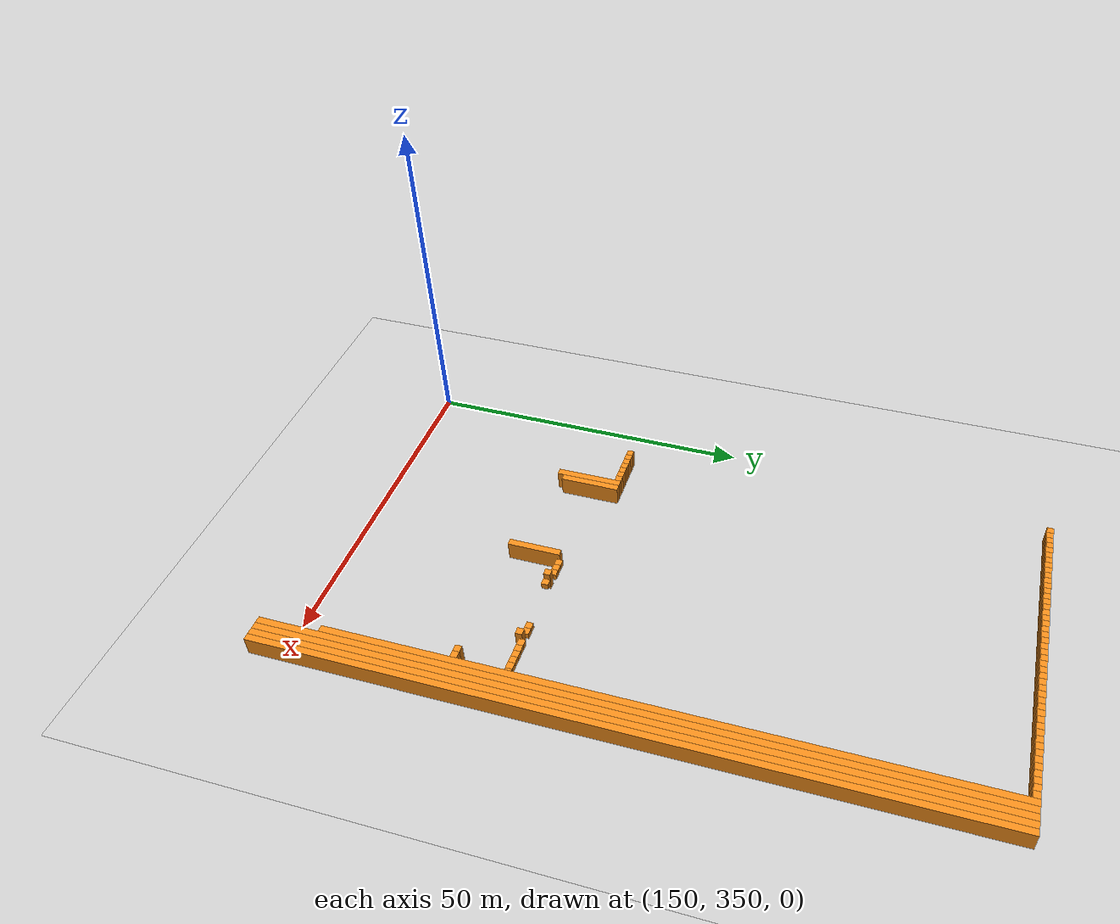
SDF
<sdf version="1.6">
 <world name="default">
  <include><uri>model://ground_plane</uri></include>
  <model name="unit_box_1642">
   <pose>155.50   449.50     1.50 0 0 0</pose>
   <static>1</static>
   <link name="link">
    <inertial>
     <mass>5000</mass>
     <inertia><ixx>200</ixx><ixy>0</ixy><ixz>0</ixz><iyy>200</iyy><iyz>0</iyz><izz>200</izz></inertia>
    </inertial>
    <collision name="collision"><geometry><box><size>1 1 3</size></box></geometry></collision>
    <visual name="visual">
     <geometry><box><size>1 1 3</size></box></geometry>
     <material>
      <script><name>Gazebo/Orange</name><uri>file://media/materials/scripts/gazebo.material</uri></script>
     </material>
    </visual>
   </link>
  </model>
  <model name="unit_box_1649">
   <pose>156.50   384.50     1.50 0 0 0</pose>
   <static>1</static>
   <link name="link">
    <inertial>
     <mass>5000</mass>
     <inertia><ixx>200</ixx><ixy>0</ixy><ixz>0</ixz><iyy>200</iyy><iyz>0</iyz><izz>200</izz></inertia>
    </inertial>
    <collision name="collision"><geometry><box><size>1 1 3</size></box></geometry></collision>
    <visual name="visual">
     <geometry><box><size>1 1 3</size></box></geometry>
     <material>
      <script><name>Gazebo/Orange</name><uri>file://media/materials/scripts/gazebo.material</uri></script>
     </material>
    </visual>
   </link>
  </model>
  <model name="unit_box_1650">
   <pose>156.50   449.50     1.50 0 0 0</pose>
   <static>1</static>
   <link name="link">
    <inertial>
     <mass>5000</mass>
     <inertia><ixx>200</ixx><ixy>0</ixy><ixz>0</ixz><iyy>200</iyy><iyz>0</iyz><izz>200</izz></inertia>
    </inertial>
    <collision name="collision"><geometry><box><size>1 1 3</size></box></geometry></collision>
    <visual name="visual">
     <geometry><box><size>1 1 3</size></box></geometry>
     <material>
      <script><name>Gazebo/Orange</name><uri>file://media/materials/scripts/gazebo.material</uri></script>
     </material>
    </visual>
   </link>
  </model>
  <model name="unit_box_1657">
   <pose>157.50   384.50     1.50 0 0 0</pose>
   <static>1</static>
   <link name="link">
    <inertial>
     <mass>5000</mass>
     <inertia><ixx>200</ixx><ixy>0</ixy><ixz>0</ixz><iyy>200</iyy><iyz>0</iyz><izz>200</izz></inertia>
    </inertial>
    <collision name="collision"><geometry><box><size>1 1 3</size></box></geometry></collision>
    <visual name="visual">
     <geometry><box><size>1 1 3</size></box></geometry>
     <material>
      <script><name>Gazebo/Orange</name><uri>file://media/materials/scripts/gazebo.material</uri></script>
     </material>
    </visual>
   </link>
  </model>
  <model name="unit_box_1658">
   <pose>157.50   449.50     1.50 0 0 0</pose>
   <static>1</static>
   <link name="link">
    <inertial>
     <mass>5000</mass>
     <inertia><ixx>200</ixx><ixy>0</ixy><ixz>0</ixz><iyy>200</iyy><iyz>0</iyz><izz>200</izz></inertia>
    </inertial>
    <collision name="collision"><geometry><box><size>1 1 3</size></box></geometry></collision>
    <visual name="visual">
     <geometry><box><size>1 1 3</size></box></geometry>
     <material>
      <script><name>Gazebo/Orange</name><uri>file://media/materials/scripts/gazebo.material</uri></script>
     </material>
    </visual>
   </link>
  </model>
  <model name="unit_box_1665">
   <pose>158.50   384.50     1.50 0 0 0</pose>
   <static>1</static>
   <link name="link">
    <inertial>
     <mass>5000</mass>
     <inertia><ixx>200</ixx><ixy>0</ixy><ixz>0</ixz><iyy>200</iyy><iyz>0</iyz><izz>200</izz></inertia>
    </inertial>
    <collision name="collision"><geometry><box><size>1 1 3</size></box></geometry></collision>
    <visual name="visual">
     <geometry><box><size>1 1 3</size></box></geometry>
     <material>
      <script><name>Gazebo/Orange</name><uri>file://media/materials/scripts/gazebo.material</uri></script>
     </material>
    </visual>
   </link>
  </model>
  <model name="unit_box_1666">
   <pose>158.50   449.50     1.50 0 0 0</pose>
   <static>1</static>
   <link name="link">
    <inertial>
     <mass>5000</mass>
     <inertia><ixx>200</ixx><ixy>0</ixy><ixz>0</ixz><iyy>200</iyy><iyz>0</iyz><izz>200</izz></inertia>
    </inertial>
    <collision name="collision"><geometry><box><size>1 1 3</size></box></geometry></collision>
    <visual name="visual">
     <geometry><box><size>1 1 3</size></box></geometry>
     <material>
      <script><name>Gazebo/Orange</name><uri>file://media/materials/scripts/gazebo.material</uri></script>
     </material>
    </visual>
   </link>
  </model>
  <model name="unit_box_1672">
   <pose>159.50   384.50     1.50 0 0 0</pose>
   <static>1</static>
   <link name="link">
    <inertial>
     <mass>5000</mass>
     <inertia><ixx>200</ixx><ixy>0</ixy><ixz>0</ixz><iyy>200</iyy><iyz>0</iyz><izz>200</izz></inertia>
    </inertial>
    <collision name="collision"><geometry><box><size>1 1 3</size></box></geometry></collision>
    <visual name="visual">
     <geometry><box><size>1 1 3</size></box></geometry>
     <material>
      <script><name>Gazebo/Orange</name><uri>file://media/materials/scripts/gazebo.material</uri></script>
     </material>
    </visual>
   </link>
  </model>
  <model name="unit_box_1673">
   <pose>159.50   449.50     1.50 0 0 0</pose>
   <static>1</static>
   <link name="link">
    <inertial>
     <mass>5000</mass>
     <inertia><ixx>200</ixx><ixy>0</ixy><ixz>0</ixz><iyy>200</iyy><iyz>0</iyz><izz>200</izz></inertia>
    </inertial>
    <collision name="collision"><geometry><box><size>1 1 3</size></box></geometry></collision>
    <visual name="visual">
     <geometry><box><size>1 1 3</size></box></geometry>
     <material>
      <script><name>Gazebo/Orange</name><uri>file://media/materials/scripts/gazebo.material</uri></script>
     </material>
    </visual>
   </link>
  </model>
  <model name="unit_box_1681">
   <pose>160.50   384.50     1.50 0 0 0</pose>
   <static>1</static>
   <link name="link">
    <inertial>
     <mass>5000</mass>
     <inertia><ixx>200</ixx><ixy>0</ixy><ixz>0</ixz><iyy>200</iyy><iyz>0</iyz><izz>200</izz></inertia>
    </inertial>
    <collision name="collision"><geometry><box><size>1 1 3</size></box></geometry></collision>
    <visual name="visual">
     <geometry><box><size>1 1 3</size></box></geometry>
     <material>
      <script><name>Gazebo/Orange</name><uri>file://media/materials/scripts/gazebo.material</uri></script>
     </material>
    </visual>
   </link>
  </model>
  <model name="unit_box_1682">
   <pose>160.50   449.50     1.50 0 0 0</pose>
   <static>1</static>
   <link name="link">
    <inertial>
     <mass>5000</mass>
     <inertia><ixx>200</ixx><ixy>0</ixy><ixz>0</ixz><iyy>200</iyy><iyz>0</iyz><izz>200</izz></inertia>
    </inertial>
    <collision name="collision"><geometry><box><size>1 1 3</size></box></geometry></collision>
    <visual name="visual">
     <geometry><box><size>1 1 3</size></box></geometry>
     <material>
      <script><name>Gazebo/Orange</name><uri>file://media/materials/scripts/gazebo.material</uri></script>
     </material>
    </visual>
   </link>
  </model>
  <model name="unit_box_1689">
   <pose>161.50   384.50     1.50 0 0 0</pose>
   <static>1</static>
   <link name="link">
    <inertial>
     <mass>5000</mass>
     <inertia><ixx>200</ixx><ixy>0</ixy><ixz>0</ixz><iyy>200</iyy><iyz>0</iyz><izz>200</izz></inertia>
    </inertial>
    <collision name="collision"><geometry><box><size>1 1 3</size></box></geometry></collision>
    <visual name="visual">
     <geometry><box><size>1 1 3</size></box></geometry>
     <material>
      <script><name>Gazebo/Orange</name><uri>file://media/materials/scripts/gazebo.material</uri></script>
     </material>
    </visual>
   </link>
  </model>
  <model name="unit_box_1690">
   <pose>161.50   449.50     1.50 0 0 0</pose>
   <static>1</static>
   <link name="link">
    <inertial>
     <mass>5000</mass>
     <inertia><ixx>200</ixx><ixy>0</ixy><ixz>0</ixz><iyy>200</iyy><iyz>0</iyz><izz>200</izz></inertia>
    </inertial>
    <collision name="collision"><geometry><box><size>1 1 3</size></box></geometry></collision>
    <visual name="visual">
     <geometry><box><size>1 1 3</size></box></geometry>
     <material>
      <script><name>Gazebo/Orange</name><uri>file://media/materials/scripts/gazebo.material</uri></script>
     </material>
    </visual>
   </link>
  </model>
  <model name="unit_box_1697">
   <pose>162.50   384.50     1.50 0 0 0</pose>
   <static>1</static>
   <link name="link">
    <inertial>
     <mass>5000</mass>
     <inertia><ixx>200</ixx><ixy>0</ixy><ixz>0</ixz><iyy>200</iyy><iyz>0</iyz><izz>200</izz></inertia>
    </inertial>
    <collision name="collision"><geometry><box><size>1 1 3</size></box></geometry></collision>
    <visual name="visual">
     <geometry><box><size>1 1 3</size></box></geometry>
     <material>
      <script><name>Gazebo/Orange</name><uri>file://media/materials/scripts/gazebo.material</uri></script>
     </material>
    </visual>
   </link>
  </model>
  <model name="unit_box_1698">
   <pose>162.50   449.50     1.50 0 0 0</pose>
   <static>1</static>
   <link name="link">
    <inertial>
     <mass>5000</mass>
     <inertia><ixx>200</ixx><ixy>0</ixy><ixz>0</ixz><iyy>200</iyy><iyz>0</iyz><izz>200</izz></inertia>
    </inertial>
    <collision name="collision"><geometry><box><size>1 1 3</size></box></geometry></collision>
    <visual name="visual">
     <geometry><box><size>1 1 3</size></box></geometry>
     <material>
      <script><name>Gazebo/Orange</name><uri>file://media/materials/scripts/gazebo.material</uri></script>
     </material>
    </visual>
   </link>
  </model>
  <model name="unit_box_1705">
   <pose>163.50   380.00     1.50 0 0 0</pose>
   <static>1</static>
   <link name="link">
    <inertial>
     <mass>5000</mass>
     <inertia><ixx>200</ixx><ixy>0</ixy><ixz>0</ixz><iyy>200</iyy><iyz>0</iyz><izz>200</izz></inertia>
    </inertial>
    <collision name="collision"><geometry><box><size>1 10 3</size></box></geometry></collision>
    <visual name="visual">
     <geometry><box><size>1 10 3</size></box></geometry>
     <material>
      <script><name>Gazebo/Orange</name><uri>file://media/materials/scripts/gazebo.material</uri></script>
     </material>
    </visual>
   </link>
  </model>
  <model name="unit_box_1706">
   <pose>163.50   449.50     1.50 0 0 0</pose>
   <static>1</static>
   <link name="link">
    <inertial>
     <mass>5000</mass>
     <inertia><ixx>200</ixx><ixy>0</ixy><ixz>0</ixz><iyy>200</iyy><iyz>0</iyz><izz>200</izz></inertia>
    </inertial>
    <collision name="collision"><geometry><box><size>1 1 3</size></box></geometry></collision>
    <visual name="visual">
     <geometry><box><size>1 1 3</size></box></geometry>
     <material>
      <script><name>Gazebo/Orange</name><uri>file://media/materials/scripts/gazebo.material</uri></script>
     </material>
    </visual>
   </link>
  </model>
  <model name="unit_box_1713">
   <pose>164.50   380.50     1.50 0 0 0</pose>
   <static>1</static>
   <link name="link">
    <inertial>
     <mass>5000</mass>
     <inertia><ixx>200</ixx><ixy>0</ixy><ixz>0</ixz><iyy>200</iyy><iyz>0</iyz><izz>200</izz></inertia>
    </inertial>
    <collision name="collision"><geometry><box><size>1 9 3</size></box></geometry></collision>
    <visual name="visual">
     <geometry><box><size>1 9 3</size></box></geometry>
     <material>
      <script><name>Gazebo/Orange</name><uri>file://media/materials/scripts/gazebo.material</uri></script>
     </material>
    </visual>
   </link>
  </model>
  <model name="unit_box_1714">
   <pose>164.50   449.50     1.50 0 0 0</pose>
   <static>1</static>
   <link name="link">
    <inertial>
     <mass>5000</mass>
     <inertia><ixx>200</ixx><ixy>0</ixy><ixz>0</ixz><iyy>200</iyy><iyz>0</iyz><izz>200</izz></inertia>
    </inertial>
    <collision name="collision"><geometry><box><size>1 1 3</size></box></geometry></collision>
    <visual name="visual">
     <geometry><box><size>1 1 3</size></box></geometry>
     <material>
      <script><name>Gazebo/Orange</name><uri>file://media/materials/scripts/gazebo.material</uri></script>
     </material>
    </visual>
   </link>
  </model>
  <model name="unit_box_1721">
   <pose>165.50   449.50     1.50 0 0 0</pose>
   <static>1</static>
   <link name="link">
    <inertial>
     <mass>5000</mass>
     <inertia><ixx>200</ixx><ixy>0</ixy><ixz>0</ixz><iyy>200</iyy><iyz>0</iyz><izz>200</izz></inertia>
    </inertial>
    <collision name="collision"><geometry><box><size>1 1 3</size></box></geometry></collision>
    <visual name="visual">
     <geometry><box><size>1 1 3</size></box></geometry>
     <material>
      <script><name>Gazebo/Orange</name><uri>file://media/materials/scripts/gazebo.material</uri></script>
     </material>
    </visual>
   </link>
  </model>
  <model name="unit_box_1727">
   <pose>166.50   449.50     1.50 0 0 0</pose>
   <static>1</static>
   <link name="link">
    <inertial>
     <mass>5000</mass>
     <inertia><ixx>200</ixx><ixy>0</ixy><ixz>0</ixz><iyy>200</iyy><iyz>0</iyz><izz>200</izz></inertia>
    </inertial>
    <collision name="collision"><geometry><box><size>1 1 3</size></box></geometry></collision>
    <visual name="visual">
     <geometry><box><size>1 1 3</size></box></geometry>
     <material>
      <script><name>Gazebo/Orange</name><uri>file://media/materials/scripts/gazebo.material</uri></script>
     </material>
    </visual>
   </link>
  </model>
  <model name="unit_box_1733">
   <pose>167.50   449.50     1.50 0 0 0</pose>
   <static>1</static>
   <link name="link">
    <inertial>
     <mass>5000</mass>
     <inertia><ixx>200</ixx><ixy>0</ixy><ixz>0</ixz><iyy>200</iyy><iyz>0</iyz><izz>200</izz></inertia>
    </inertial>
    <collision name="collision"><geometry><box><size>1 1 3</size></box></geometry></collision>
    <visual name="visual">
     <geometry><box><size>1 1 3</size></box></geometry>
     <material>
      <script><name>Gazebo/Orange</name><uri>file://media/materials/scripts/gazebo.material</uri></script>
     </material>
    </visual>
   </link>
  </model>
  <model name="unit_box_1739">
   <pose>168.50   449.50     1.50 0 0 0</pose>
   <static>1</static>
   <link name="link">
    <inertial>
     <mass>5000</mass>
     <inertia><ixx>200</ixx><ixy>0</ixy><ixz>0</ixz><iyy>200</iyy><iyz>0</iyz><izz>200</izz></inertia>
    </inertial>
    <collision name="collision"><geometry><box><size>1 1 3</size></box></geometry></collision>
    <visual name="visual">
     <geometry><box><size>1 1 3</size></box></geometry>
     <material>
      <script><name>Gazebo/Orange</name><uri>file://media/materials/scripts/gazebo.material</uri></script>
     </material>
    </visual>
   </link>
  </model>
  <model name="unit_box_1746">
   <pose>169.50   449.50     1.50 0 0 0</pose>
   <static>1</static>
   <link name="link">
    <inertial>
     <mass>5000</mass>
     <inertia><ixx>200</ixx><ixy>0</ixy><ixz>0</ixz><iyy>200</iyy><iyz>0</iyz><izz>200</izz></inertia>
    </inertial>
    <collision name="collision"><geometry><box><size>1 1 3</size></box></geometry></collision>
    <visual name="visual">
     <geometry><box><size>1 1 3</size></box></geometry>
     <material>
      <script><name>Gazebo/Orange</name><uri>file://media/materials/scripts/gazebo.material</uri></script>
     </material>
    </visual>
   </link>
  </model>
  <model name="unit_box_1753">
   <pose>170.50   449.50     1.50 0 0 0</pose>
   <static>1</static>
   <link name="link">
    <inertial>
     <mass>5000</mass>
     <inertia><ixx>200</ixx><ixy>0</ixy><ixz>0</ixz><iyy>200</iyy><iyz>0</iyz><izz>200</izz></inertia>
    </inertial>
    <collision name="collision"><geometry><box><size>1 1 3</size></box></geometry></collision>
    <visual name="visual">
     <geometry><box><size>1 1 3</size></box></geometry>
     <material>
      <script><name>Gazebo/Orange</name><uri>file://media/materials/scripts/gazebo.material</uri></script>
     </material>
    </visual>
   </link>
  </model>
  <model name="unit_box_1760">
   <pose>171.50   449.50     1.50 0 0 0</pose>
   <static>1</static>
   <link name="link">
    <inertial>
     <mass>5000</mass>
     <inertia><ixx>200</ixx><ixy>0</ixy><ixz>0</ixz><iyy>200</iyy><iyz>0</iyz><izz>200</izz></inertia>
    </inertial>
    <collision name="collision"><geometry><box><size>1 1 3</size></box></geometry></collision>
    <visual name="visual">
     <geometry><box><size>1 1 3</size></box></geometry>
     <material>
      <script><name>Gazebo/Orange</name><uri>file://media/materials/scripts/gazebo.material</uri></script>
     </material>
    </visual>
   </link>
  </model>
  <model name="unit_box_1767">
   <pose>172.50   449.50     1.50 0 0 0</pose>
   <static>1</static>
   <link name="link">
    <inertial>
     <mass>5000</mass>
     <inertia><ixx>200</ixx><ixy>0</ixy><ixz>0</ixz><iyy>200</iyy><iyz>0</iyz><izz>200</izz></inertia>
    </inertial>
    <collision name="collision"><geometry><box><size>1 1 3</size></box></geometry></collision>
    <visual name="visual">
     <geometry><box><size>1 1 3</size></box></geometry>
     <material>
      <script><name>Gazebo/Orange</name><uri>file://media/materials/scripts/gazebo.material</uri></script>
     </material>
    </visual>
   </link>
  </model>
  <model name="unit_box_1774">
   <pose>173.50   449.50     1.50 0 0 0</pose>
   <static>1</static>
   <link name="link">
    <inertial>
     <mass>5000</mass>
     <inertia><ixx>200</ixx><ixy>0</ixy><ixz>0</ixz><iyy>200</iyy><iyz>0</iyz><izz>200</izz></inertia>
    </inertial>
    <collision name="collision"><geometry><box><size>1 1 3</size></box></geometry></collision>
    <visual name="visual">
     <geometry><box><size>1 1 3</size></box></geometry>
     <material>
      <script><name>Gazebo/Orange</name><uri>file://media/materials/scripts/gazebo.material</uri></script>
     </material>
    </visual>
   </link>
  </model>
  <model name="unit_box_1781">
   <pose>174.50   449.50     1.50 0 0 0</pose>
   <static>1</static>
   <link name="link">
    <inertial>
     <mass>5000</mass>
     <inertia><ixx>200</ixx><ixy>0</ixy><ixz>0</ixz><iyy>200</iyy><iyz>0</iyz><izz>200</izz></inertia>
    </inertial>
    <collision name="collision"><geometry><box><size>1 1 3</size></box></geometry></collision>
    <visual name="visual">
     <geometry><box><size>1 1 3</size></box></geometry>
     <material>
      <script><name>Gazebo/Orange</name><uri>file://media/materials/scripts/gazebo.material</uri></script>
     </material>
    </visual>
   </link>
  </model>
  <model name="unit_box_1788">
   <pose>175.50   449.50     1.50 0 0 0</pose>
   <static>1</static>
   <link name="link">
    <inertial>
     <mass>5000</mass>
     <inertia><ixx>200</ixx><ixy>0</ixy><ixz>0</ixz><iyy>200</iyy><iyz>0</iyz><izz>200</izz></inertia>
    </inertial>
    <collision name="collision"><geometry><box><size>1 1 3</size></box></geometry></collision>
    <visual name="visual">
     <geometry><box><size>1 1 3</size></box></geometry>
     <material>
      <script><name>Gazebo/Orange</name><uri>file://media/materials/scripts/gazebo.material</uri></script>
     </material>
    </visual>
   </link>
  </model>
  <model name="unit_box_1795">
   <pose>176.50   449.50     1.50 0 0 0</pose>
   <static>1</static>
   <link name="link">
    <inertial>
     <mass>5000</mass>
     <inertia><ixx>200</ixx><ixy>0</ixy><ixz>0</ixz><iyy>200</iyy><iyz>0</iyz><izz>200</izz></inertia>
    </inertial>
    <collision name="collision"><geometry><box><size>1 1 3</size></box></geometry></collision>
    <visual name="visual">
     <geometry><box><size>1 1 3</size></box></geometry>
     <material>
      <script><name>Gazebo/Orange</name><uri>file://media/materials/scripts/gazebo.material</uri></script>
     </material>
    </visual>
   </link>
  </model>
  <model name="unit_box_1802">
   <pose>177.50   449.50     1.50 0 0 0</pose>
   <static>1</static>
   <link name="link">
    <inertial>
     <mass>5000</mass>
     <inertia><ixx>200</ixx><ixy>0</ixy><ixz>0</ixz><iyy>200</iyy><iyz>0</iyz><izz>200</izz></inertia>
    </inertial>
    <collision name="collision"><geometry><box><size>1 1 3</size></box></geometry></collision>
    <visual name="visual">
     <geometry><box><size>1 1 3</size></box></geometry>
     <material>
      <script><name>Gazebo/Orange</name><uri>file://media/materials/scripts/gazebo.material</uri></script>
     </material>
    </visual>
   </link>
  </model>
  <model name="unit_box_1810">
   <pose>178.50   449.50     1.50 0 0 0</pose>
   <static>1</static>
   <link name="link">
    <inertial>
     <mass>5000</mass>
     <inertia><ixx>200</ixx><ixy>0</ixy><ixz>0</ixz><iyy>200</iyy><iyz>0</iyz><izz>200</izz></inertia>
    </inertial>
    <collision name="collision"><geometry><box><size>1 1 3</size></box></geometry></collision>
    <visual name="visual">
     <geometry><box><size>1 1 3</size></box></geometry>
     <material>
      <script><name>Gazebo/Orange</name><uri>file://media/materials/scripts/gazebo.material</uri></script>
     </material>
    </visual>
   </link>
  </model>
  <model name="unit_box_1817">
   <pose>179.50   377.00     1.50 0 0 0</pose>
   <static>1</static>
   <link name="link">
    <inertial>
     <mass>5000</mass>
     <inertia><ixx>200</ixx><ixy>0</ixy><ixz>0</ixz><iyy>200</iyy><iyz>0</iyz><izz>200</izz></inertia>
    </inertial>
    <collision name="collision"><geometry><box><size>1 8 3</size></box></geometry></collision>
    <visual name="visual">
     <geometry><box><size>1 8 3</size></box></geometry>
     <material>
      <script><name>Gazebo/Orange</name><uri>file://media/materials/scripts/gazebo.material</uri></script>
     </material>
    </visual>
   </link>
  </model>
  <model name="unit_box_1818">
   <pose>179.50   449.50     1.50 0 0 0</pose>
   <static>1</static>
   <link name="link">
    <inertial>
     <mass>5000</mass>
     <inertia><ixx>200</ixx><ixy>0</ixy><ixz>0</ixz><iyy>200</iyy><iyz>0</iyz><izz>200</izz></inertia>
    </inertial>
    <collision name="collision"><geometry><box><size>1 1 3</size></box></geometry></collision>
    <visual name="visual">
     <geometry><box><size>1 1 3</size></box></geometry>
     <material>
      <script><name>Gazebo/Orange</name><uri>file://media/materials/scripts/gazebo.material</uri></script>
     </material>
    </visual>
   </link>
  </model>
  <model name="unit_box_1826">
   <pose>180.50   381.00     1.50 0 0 0</pose>
   <static>1</static>
   <link name="link">
    <inertial>
     <mass>5000</mass>
     <inertia><ixx>200</ixx><ixy>0</ixy><ixz>0</ixz><iyy>200</iyy><iyz>0</iyz><izz>200</izz></inertia>
    </inertial>
    <collision name="collision"><geometry><box><size>1 1 1</size></box></geometry></collision>
    <visual name="visual">
     <geometry><box><size>1 1 1</size></box></geometry>
     <material>
      <script><name>Gazebo/Orange</name><uri>file://media/materials/scripts/gazebo.material</uri></script>
     </material>
    </visual>
   </link>
  </model>
  <model name="unit_box_1827">
   <pose>180.50   449.50     1.50 0 0 0</pose>
   <static>1</static>
   <link name="link">
    <inertial>
     <mass>5000</mass>
     <inertia><ixx>200</ixx><ixy>0</ixy><ixz>0</ixz><iyy>200</iyy><iyz>0</iyz><izz>200</izz></inertia>
    </inertial>
    <collision name="collision"><geometry><box><size>1 1 3</size></box></geometry></collision>
    <visual name="visual">
     <geometry><box><size>1 1 3</size></box></geometry>
     <material>
      <script><name>Gazebo/Orange</name><uri>file://media/materials/scripts/gazebo.material</uri></script>
     </material>
    </visual>
   </link>
  </model>
  <model name="unit_box_1836">
   <pose>181.50   381.00     1.50 0 0 0</pose>
   <static>1</static>
   <link name="link">
    <inertial>
     <mass>5000</mass>
     <inertia><ixx>200</ixx><ixy>0</ixy><ixz>0</ixz><iyy>200</iyy><iyz>0</iyz><izz>200</izz></inertia>
    </inertial>
    <collision name="collision"><geometry><box><size>1 1 1</size></box></geometry></collision>
    <visual name="visual">
     <geometry><box><size>1 1 1</size></box></geometry>
     <material>
      <script><name>Gazebo/Orange</name><uri>file://media/materials/scripts/gazebo.material</uri></script>
     </material>
    </visual>
   </link>
  </model>
  <model name="unit_box_1837">
   <pose>181.50   449.50     1.50 0 0 0</pose>
   <static>1</static>
   <link name="link">
    <inertial>
     <mass>5000</mass>
     <inertia><ixx>200</ixx><ixy>0</ixy><ixz>0</ixz><iyy>200</iyy><iyz>0</iyz><izz>200</izz></inertia>
    </inertial>
    <collision name="collision"><geometry><box><size>1 1 3</size></box></geometry></collision>
    <visual name="visual">
     <geometry><box><size>1 1 3</size></box></geometry>
     <material>
      <script><name>Gazebo/Orange</name><uri>file://media/materials/scripts/gazebo.material</uri></script>
     </material>
    </visual>
   </link>
  </model>
  <model name="unit_box_1845">
   <pose>182.50   381.00     1.50 0 0 0</pose>
   <static>1</static>
   <link name="link">
    <inertial>
     <mass>5000</mass>
     <inertia><ixx>200</ixx><ixy>0</ixy><ixz>0</ixz><iyy>200</iyy><iyz>0</iyz><izz>200</izz></inertia>
    </inertial>
    <collision name="collision"><geometry><box><size>1 1 1</size></box></geometry></collision>
    <visual name="visual">
     <geometry><box><size>1 1 1</size></box></geometry>
     <material>
      <script><name>Gazebo/Orange</name><uri>file://media/materials/scripts/gazebo.material</uri></script>
     </material>
    </visual>
   </link>
  </model>
  <model name="unit_box_1846">
   <pose>182.50   449.50     1.50 0 0 0</pose>
   <static>1</static>
   <link name="link">
    <inertial>
     <mass>5000</mass>
     <inertia><ixx>200</ixx><ixy>0</ixy><ixz>0</ixz><iyy>200</iyy><iyz>0</iyz><izz>200</izz></inertia>
    </inertial>
    <collision name="collision"><geometry><box><size>1 1 3</size></box></geometry></collision>
    <visual name="visual">
     <geometry><box><size>1 1 3</size></box></geometry>
     <material>
      <script><name>Gazebo/Orange</name><uri>file://media/materials/scripts/gazebo.material</uri></script>
     </material>
    </visual>
   </link>
  </model>
  <model name="unit_box_1854">
   <pose>183.50   380.50     1.50 0 0 0</pose>
   <static>1</static>
   <link name="link">
    <inertial>
     <mass>5000</mass>
     <inertia><ixx>200</ixx><ixy>0</ixy><ixz>0</ixz><iyy>200</iyy><iyz>0</iyz><izz>200</izz></inertia>
    </inertial>
    <collision name="collision"><geometry><box><size>1 1 3</size></box></geometry></collision>
    <visual name="visual">
     <geometry><box><size>1 1 3</size></box></geometry>
     <material>
      <script><name>Gazebo/Orange</name><uri>file://media/materials/scripts/gazebo.material</uri></script>
     </material>
    </visual>
   </link>
  </model>
  <model name="unit_box_1855">
   <pose>183.50   449.50     1.50 0 0 0</pose>
   <static>1</static>
   <link name="link">
    <inertial>
     <mass>5000</mass>
     <inertia><ixx>200</ixx><ixy>0</ixy><ixz>0</ixz><iyy>200</iyy><iyz>0</iyz><izz>200</izz></inertia>
    </inertial>
    <collision name="collision"><geometry><box><size>1 1 3</size></box></geometry></collision>
    <visual name="visual">
     <geometry><box><size>1 1 3</size></box></geometry>
     <material>
      <script><name>Gazebo/Orange</name><uri>file://media/materials/scripts/gazebo.material</uri></script>
     </material>
    </visual>
   </link>
  </model>
  <model name="unit_box_1863">
   <pose>184.50   380.50     1.50 0 0 0</pose>
   <static>1</static>
   <link name="link">
    <inertial>
     <mass>5000</mass>
     <inertia><ixx>200</ixx><ixy>0</ixy><ixz>0</ixz><iyy>200</iyy><iyz>0</iyz><izz>200</izz></inertia>
    </inertial>
    <collision name="collision"><geometry><box><size>1 1 1</size></box></geometry></collision>
    <visual name="visual">
     <geometry><box><size>1 1 1</size></box></geometry>
     <material>
      <script><name>Gazebo/Orange</name><uri>file://media/materials/scripts/gazebo.material</uri></script>
     </material>
    </visual>
   </link>
  </model>
  <model name="unit_box_1864">
   <pose>184.50   449.50     1.50 0 0 0</pose>
   <static>1</static>
   <link name="link">
    <inertial>
     <mass>5000</mass>
     <inertia><ixx>200</ixx><ixy>0</ixy><ixz>0</ixz><iyy>200</iyy><iyz>0</iyz><izz>200</izz></inertia>
    </inertial>
    <collision name="collision"><geometry><box><size>1 1 3</size></box></geometry></collision>
    <visual name="visual">
     <geometry><box><size>1 1 3</size></box></geometry>
     <material>
      <script><name>Gazebo/Orange</name><uri>file://media/materials/scripts/gazebo.material</uri></script>
     </material>
    </visual>
   </link>
  </model>
  <model name="unit_box_1872">
   <pose>185.50   449.50     1.50 0 0 0</pose>
   <static>1</static>
   <link name="link">
    <inertial>
     <mass>5000</mass>
     <inertia><ixx>200</ixx><ixy>0</ixy><ixz>0</ixz><iyy>200</iyy><iyz>0</iyz><izz>200</izz></inertia>
    </inertial>
    <collision name="collision"><geometry><box><size>1 1 3</size></box></geometry></collision>
    <visual name="visual">
     <geometry><box><size>1 1 3</size></box></geometry>
     <material>
      <script><name>Gazebo/Orange</name><uri>file://media/materials/scripts/gazebo.material</uri></script>
     </material>
    </visual>
   </link>
  </model>
  <model name="unit_box_1880">
   <pose>186.50   449.50     1.50 0 0 0</pose>
   <static>1</static>
   <link name="link">
    <inertial>
     <mass>5000</mass>
     <inertia><ixx>200</ixx><ixy>0</ixy><ixz>0</ixz><iyy>200</iyy><iyz>0</iyz><izz>200</izz></inertia>
    </inertial>
    <collision name="collision"><geometry><box><size>1 1 3</size></box></geometry></collision>
    <visual name="visual">
     <geometry><box><size>1 1 3</size></box></geometry>
     <material>
      <script><name>Gazebo/Orange</name><uri>file://media/materials/scripts/gazebo.material</uri></script>
     </material>
    </visual>
   </link>
  </model>
  <model name="unit_box_1888">
   <pose>187.50   449.50     1.50 0 0 0</pose>
   <static>1</static>
   <link name="link">
    <inertial>
     <mass>5000</mass>
     <inertia><ixx>200</ixx><ixy>0</ixy><ixz>0</ixz><iyy>200</iyy><iyz>0</iyz><izz>200</izz></inertia>
    </inertial>
    <collision name="collision"><geometry><box><size>1 1 3</size></box></geometry></collision>
    <visual name="visual">
     <geometry><box><size>1 1 3</size></box></geometry>
     <material>
      <script><name>Gazebo/Orange</name><uri>file://media/materials/scripts/gazebo.material</uri></script>
     </material>
    </visual>
   </link>
  </model>
  <model name="unit_box_1896">
   <pose>188.50   449.50     1.50 0 0 0</pose>
   <static>1</static>
   <link name="link">
    <inertial>
     <mass>5000</mass>
     <inertia><ixx>200</ixx><ixy>0</ixy><ixz>0</ixz><iyy>200</iyy><iyz>0</iyz><izz>200</izz></inertia>
    </inertial>
    <collision name="collision"><geometry><box><size>1 1 3</size></box></geometry></collision>
    <visual name="visual">
     <geometry><box><size>1 1 3</size></box></geometry>
     <material>
      <script><name>Gazebo/Orange</name><uri>file://media/materials/scripts/gazebo.material</uri></script>
     </material>
    </visual>
   </link>
  </model>
  <model name="unit_box_1904">
   <pose>189.50   449.50     1.50 0 0 0</pose>
   <static>1</static>
   <link name="link">
    <inertial>
     <mass>5000</mass>
     <inertia><ixx>200</ixx><ixy>0</ixy><ixz>0</ixz><iyy>200</iyy><iyz>0</iyz><izz>200</izz></inertia>
    </inertial>
    <collision name="collision"><geometry><box><size>1 1 3</size></box></geometry></collision>
    <visual name="visual">
     <geometry><box><size>1 1 3</size></box></geometry>
     <material>
      <script><name>Gazebo/Orange</name><uri>file://media/materials/scripts/gazebo.material</uri></script>
     </material>
    </visual>
   </link>
  </model>
  <model name="unit_box_1912">
   <pose>190.50   449.50     1.50 0 0 0</pose>
   <static>1</static>
   <link name="link">
    <inertial>
     <mass>5000</mass>
     <inertia><ixx>200</ixx><ixy>0</ixy><ixz>0</ixz><iyy>200</iyy><iyz>0</iyz><izz>200</izz></inertia>
    </inertial>
    <collision name="collision"><geometry><box><size>1 1 3</size></box></geometry></collision>
    <visual name="visual">
     <geometry><box><size>1 1 3</size></box></geometry>
     <material>
      <script><name>Gazebo/Orange</name><uri>file://media/materials/scripts/gazebo.material</uri></script>
     </material>
    </visual>
   </link>
  </model>
  <model name="unit_box_1920">
   <pose>191.50   449.50     1.50 0 0 0</pose>
   <static>1</static>
   <link name="link">
    <inertial>
     <mass>5000</mass>
     <inertia><ixx>200</ixx><ixy>0</ixy><ixz>0</ixz><iyy>200</iyy><iyz>0</iyz><izz>200</izz></inertia>
    </inertial>
    <collision name="collision"><geometry><box><size>1 1 3</size></box></geometry></collision>
    <visual name="visual">
     <geometry><box><size>1 1 3</size></box></geometry>
     <material>
      <script><name>Gazebo/Orange</name><uri>file://media/materials/scripts/gazebo.material</uri></script>
     </material>
    </visual>
   </link>
  </model>
  <model name="unit_box_1928">
   <pose>192.50   381.00     1.50 0 0 0</pose>
   <static>1</static>
   <link name="link">
    <inertial>
     <mass>5000</mass>
     <inertia><ixx>200</ixx><ixy>0</ixy><ixz>0</ixz><iyy>200</iyy><iyz>0</iyz><izz>200</izz></inertia>
    </inertial>
    <collision name="collision"><geometry><box><size>1 1 1</size></box></geometry></collision>
    <visual name="visual">
     <geometry><box><size>1 1 1</size></box></geometry>
     <material>
      <script><name>Gazebo/Orange</name><uri>file://media/materials/scripts/gazebo.material</uri></script>
     </material>
    </visual>
   </link>
  </model>
  <model name="unit_box_1929">
   <pose>192.50   449.50     1.50 0 0 0</pose>
   <static>1</static>
   <link name="link">
    <inertial>
     <mass>5000</mass>
     <inertia><ixx>200</ixx><ixy>0</ixy><ixz>0</ixz><iyy>200</iyy><iyz>0</iyz><izz>200</izz></inertia>
    </inertial>
    <collision name="collision"><geometry><box><size>1 1 3</size></box></geometry></collision>
    <visual name="visual">
     <geometry><box><size>1 1 3</size></box></geometry>
     <material>
      <script><name>Gazebo/Orange</name><uri>file://media/materials/scripts/gazebo.material</uri></script>
     </material>
    </visual>
   </link>
  </model>
  <model name="unit_box_1937">
   <pose>193.50   381.00     1.50 0 0 0</pose>
   <static>1</static>
   <link name="link">
    <inertial>
     <mass>5000</mass>
     <inertia><ixx>200</ixx><ixy>0</ixy><ixz>0</ixz><iyy>200</iyy><iyz>0</iyz><izz>200</izz></inertia>
    </inertial>
    <collision name="collision"><geometry><box><size>1 1 1</size></box></geometry></collision>
    <visual name="visual">
     <geometry><box><size>1 1 1</size></box></geometry>
     <material>
      <script><name>Gazebo/Orange</name><uri>file://media/materials/scripts/gazebo.material</uri></script>
     </material>
    </visual>
   </link>
  </model>
  <model name="unit_box_1938">
   <pose>193.50   449.50     1.50 0 0 0</pose>
   <static>1</static>
   <link name="link">
    <inertial>
     <mass>5000</mass>
     <inertia><ixx>200</ixx><ixy>0</ixy><ixz>0</ixz><iyy>200</iyy><iyz>0</iyz><izz>200</izz></inertia>
    </inertial>
    <collision name="collision"><geometry><box><size>1 1 3</size></box></geometry></collision>
    <visual name="visual">
     <geometry><box><size>1 1 3</size></box></geometry>
     <material>
      <script><name>Gazebo/Orange</name><uri>file://media/materials/scripts/gazebo.material</uri></script>
     </material>
    </visual>
   </link>
  </model>
  <model name="unit_box_1946">
   <pose>194.50   380.50     1.50 0 0 0</pose>
   <static>1</static>
   <link name="link">
    <inertial>
     <mass>5000</mass>
     <inertia><ixx>200</ixx><ixy>0</ixy><ixz>0</ixz><iyy>200</iyy><iyz>0</iyz><izz>200</izz></inertia>
    </inertial>
    <collision name="collision"><geometry><box><size>1 1 3</size></box></geometry></collision>
    <visual name="visual">
     <geometry><box><size>1 1 3</size></box></geometry>
     <material>
      <script><name>Gazebo/Orange</name><uri>file://media/materials/scripts/gazebo.material</uri></script>
     </material>
    </visual>
   </link>
  </model>
  <model name="unit_box_1947">
   <pose>194.50   449.50     1.50 0 0 0</pose>
   <static>1</static>
   <link name="link">
    <inertial>
     <mass>5000</mass>
     <inertia><ixx>200</ixx><ixy>0</ixy><ixz>0</ixz><iyy>200</iyy><iyz>0</iyz><izz>200</izz></inertia>
    </inertial>
    <collision name="collision"><geometry><box><size>1 1 3</size></box></geometry></collision>
    <visual name="visual">
     <geometry><box><size>1 1 3</size></box></geometry>
     <material>
      <script><name>Gazebo/Orange</name><uri>file://media/materials/scripts/gazebo.material</uri></script>
     </material>
    </visual>
   </link>
  </model>
  <model name="unit_box_1955">
   <pose>195.50   381.00     1.50 0 0 0</pose>
   <static>1</static>
   <link name="link">
    <inertial>
     <mass>5000</mass>
     <inertia><ixx>200</ixx><ixy>0</ixy><ixz>0</ixz><iyy>200</iyy><iyz>0</iyz><izz>200</izz></inertia>
    </inertial>
    <collision name="collision"><geometry><box><size>1 1 1</size></box></geometry></collision>
    <visual name="visual">
     <geometry><box><size>1 1 1</size></box></geometry>
     <material>
      <script><name>Gazebo/Orange</name><uri>file://media/materials/scripts/gazebo.material</uri></script>
     </material>
    </visual>
   </link>
  </model>
  <model name="unit_box_1956">
   <pose>195.50   449.50     1.50 0 0 0</pose>
   <static>1</static>
   <link name="link">
    <inertial>
     <mass>5000</mass>
     <inertia><ixx>200</ixx><ixy>0</ixy><ixz>0</ixz><iyy>200</iyy><iyz>0</iyz><izz>200</izz></inertia>
    </inertial>
    <collision name="collision"><geometry><box><size>1 1 3</size></box></geometry></collision>
    <visual name="visual">
     <geometry><box><size>1 1 3</size></box></geometry>
     <material>
      <script><name>Gazebo/Orange</name><uri>file://media/materials/scripts/gazebo.material</uri></script>
     </material>
    </visual>
   </link>
  </model>
  <model name="unit_box_1964">
   <pose>196.50   381.00     1.50 0 0 0</pose>
   <static>1</static>
   <link name="link">
    <inertial>
     <mass>5000</mass>
     <inertia><ixx>200</ixx><ixy>0</ixy><ixz>0</ixz><iyy>200</iyy><iyz>0</iyz><izz>200</izz></inertia>
    </inertial>
    <collision name="collision"><geometry><box><size>1 1 1</size></box></geometry></collision>
    <visual name="visual">
     <geometry><box><size>1 1 1</size></box></geometry>
     <material>
      <script><name>Gazebo/Orange</name><uri>file://media/materials/scripts/gazebo.material</uri></script>
     </material>
    </visual>
   </link>
  </model>
  <model name="unit_box_1965">
   <pose>196.50   449.50     1.50 0 0 0</pose>
   <static>1</static>
   <link name="link">
    <inertial>
     <mass>5000</mass>
     <inertia><ixx>200</ixx><ixy>0</ixy><ixz>0</ixz><iyy>200</iyy><iyz>0</iyz><izz>200</izz></inertia>
    </inertial>
    <collision name="collision"><geometry><box><size>1 1 3</size></box></geometry></collision>
    <visual name="visual">
     <geometry><box><size>1 1 3</size></box></geometry>
     <material>
      <script><name>Gazebo/Orange</name><uri>file://media/materials/scripts/gazebo.material</uri></script>
     </material>
    </visual>
   </link>
  </model>
  <model name="unit_box_1973">
   <pose>197.50   381.00     1.50 0 0 0</pose>
   <static>1</static>
   <link name="link">
    <inertial>
     <mass>5000</mass>
     <inertia><ixx>200</ixx><ixy>0</ixy><ixz>0</ixz><iyy>200</iyy><iyz>0</iyz><izz>200</izz></inertia>
    </inertial>
    <collision name="collision"><geometry><box><size>1 1 1</size></box></geometry></collision>
    <visual name="visual">
     <geometry><box><size>1 1 1</size></box></geometry>
     <material>
      <script><name>Gazebo/Orange</name><uri>file://media/materials/scripts/gazebo.material</uri></script>
     </material>
    </visual>
   </link>
  </model>
  <model name="unit_box_1974">
   <pose>197.50   449.50     1.50 0 0 0</pose>
   <static>1</static>
   <link name="link">
    <inertial>
     <mass>5000</mass>
     <inertia><ixx>200</ixx><ixy>0</ixy><ixz>0</ixz><iyy>200</iyy><iyz>0</iyz><izz>200</izz></inertia>
    </inertial>
    <collision name="collision"><geometry><box><size>1 1 3</size></box></geometry></collision>
    <visual name="visual">
     <geometry><box><size>1 1 3</size></box></geometry>
     <material>
      <script><name>Gazebo/Orange</name><uri>file://media/materials/scripts/gazebo.material</uri></script>
     </material>
    </visual>
   </link>
  </model>
  <model name="unit_box_1982">
   <pose>198.50   381.00     1.50 0 0 0</pose>
   <static>1</static>
   <link name="link">
    <inertial>
     <mass>5000</mass>
     <inertia><ixx>200</ixx><ixy>0</ixy><ixz>0</ixz><iyy>200</iyy><iyz>0</iyz><izz>200</izz></inertia>
    </inertial>
    <collision name="collision"><geometry><box><size>1 1 1</size></box></geometry></collision>
    <visual name="visual">
     <geometry><box><size>1 1 1</size></box></geometry>
     <material>
      <script><name>Gazebo/Orange</name><uri>file://media/materials/scripts/gazebo.material</uri></script>
     </material>
    </visual>
   </link>
  </model>
  <model name="unit_box_1983">
   <pose>198.50   449.50     1.50 0 0 0</pose>
   <static>1</static>
   <link name="link">
    <inertial>
     <mass>5000</mass>
     <inertia><ixx>200</ixx><ixy>0</ixy><ixz>0</ixz><iyy>200</iyy><iyz>0</iyz><izz>200</izz></inertia>
    </inertial>
    <collision name="collision"><geometry><box><size>1 1 3</size></box></geometry></collision>
    <visual name="visual">
     <geometry><box><size>1 1 3</size></box></geometry>
     <material>
      <script><name>Gazebo/Orange</name><uri>file://media/materials/scripts/gazebo.material</uri></script>
     </material>
    </visual>
   </link>
  </model>
  <model name="unit_box_1990">
   <pose>199.50   373.50     1.50 0 0 0</pose>
   <static>1</static>
   <link name="link">
    <inertial>
     <mass>5000</mass>
     <inertia><ixx>200</ixx><ixy>0</ixy><ixz>0</ixz><iyy>200</iyy><iyz>0</iyz><izz>200</izz></inertia>
    </inertial>
    <collision name="collision"><geometry><box><size>1 1 3</size></box></geometry></collision>
    <visual name="visual">
     <geometry><box><size>1 1 3</size></box></geometry>
     <material>
      <script><name>Gazebo/Orange</name><uri>file://media/materials/scripts/gazebo.material</uri></script>
     </material>
    </visual>
   </link>
  </model>
  <model name="unit_box_1991">
   <pose>199.50   381.00     1.50 0 0 0</pose>
   <static>1</static>
   <link name="link">
    <inertial>
     <mass>5000</mass>
     <inertia><ixx>200</ixx><ixy>0</ixy><ixz>0</ixz><iyy>200</iyy><iyz>0</iyz><izz>200</izz></inertia>
    </inertial>
    <collision name="collision"><geometry><box><size>1 1 1</size></box></geometry></collision>
    <visual name="visual">
     <geometry><box><size>1 1 1</size></box></geometry>
     <material>
      <script><name>Gazebo/Orange</name><uri>file://media/materials/scripts/gazebo.material</uri></script>
     </material>
    </visual>
   </link>
  </model>
  <model name="unit_box_1992">
   <pose>199.50   449.50     1.50 0 0 0</pose>
   <static>1</static>
   <link name="link">
    <inertial>
     <mass>5000</mass>
     <inertia><ixx>200</ixx><ixy>0</ixy><ixz>0</ixz><iyy>200</iyy><iyz>0</iyz><izz>200</izz></inertia>
    </inertial>
    <collision name="collision"><geometry><box><size>1 1 3</size></box></geometry></collision>
    <visual name="visual">
     <geometry><box><size>1 1 3</size></box></geometry>
     <material>
      <script><name>Gazebo/Orange</name><uri>file://media/materials/scripts/gazebo.material</uri></script>
     </material>
    </visual>
   </link>
  </model>
  <model name="unit_box_1999">
   <pose>200.50   373.50     1.50 0 0 0</pose>
   <static>1</static>
   <link name="link">
    <inertial>
     <mass>5000</mass>
     <inertia><ixx>200</ixx><ixy>0</ixy><ixz>0</ixz><iyy>200</iyy><iyz>0</iyz><izz>200</izz></inertia>
    </inertial>
    <collision name="collision"><geometry><box><size>1 1 3</size></box></geometry></collision>
    <visual name="visual">
     <geometry><box><size>1 1 3</size></box></geometry>
     <material>
      <script><name>Gazebo/Orange</name><uri>file://media/materials/scripts/gazebo.material</uri></script>
     </material>
    </visual>
   </link>
  </model>
  <model name="unit_box_2000">
   <pose>200.50   381.00     1.50 0 0 0</pose>
   <static>1</static>
   <link name="link">
    <inertial>
     <mass>5000</mass>
     <inertia><ixx>200</ixx><ixy>0</ixy><ixz>0</ixz><iyy>200</iyy><iyz>0</iyz><izz>200</izz></inertia>
    </inertial>
    <collision name="collision"><geometry><box><size>1 1 1</size></box></geometry></collision>
    <visual name="visual">
     <geometry><box><size>1 1 1</size></box></geometry>
     <material>
      <script><name>Gazebo/Orange</name><uri>file://media/materials/scripts/gazebo.material</uri></script>
     </material>
    </visual>
   </link>
  </model>
  <model name="unit_box_2001">
   <pose>200.50   449.50     1.50 0 0 0</pose>
   <static>1</static>
   <link name="link">
    <inertial>
     <mass>5000</mass>
     <inertia><ixx>200</ixx><ixy>0</ixy><ixz>0</ixz><iyy>200</iyy><iyz>0</iyz><izz>200</izz></inertia>
    </inertial>
    <collision name="collision"><geometry><box><size>1 1 3</size></box></geometry></collision>
    <visual name="visual">
     <geometry><box><size>1 1 3</size></box></geometry>
     <material>
      <script><name>Gazebo/Orange</name><uri>file://media/materials/scripts/gazebo.material</uri></script>
     </material>
    </visual>
   </link>
  </model>
  <model name="unit_box_2013">
   <pose>201.50   402.00     1.50 0 0 0</pose>
   <static>1</static>
   <link name="link">
    <inertial>
     <mass>5000</mass>
     <inertia><ixx>200</ixx><ixy>0</ixy><ixz>0</ixz><iyy>200</iyy><iyz>0</iyz><izz>200</izz></inertia>
    </inertial>
    <collision name="collision"><geometry><box><size>1 96 3</size></box></geometry></collision>
    <visual name="visual">
     <geometry><box><size>1 96 3</size></box></geometry>
     <material>
      <script><name>Gazebo/Orange</name><uri>file://media/materials/scripts/gazebo.material</uri></script>
     </material>
    </visual>
   </link>
  </model>
  <model name="unit_box_2015">
   <pose>202.50   397.50     1.50 0 0 0</pose>
   <static>1</static>
   <link name="link">
    <inertial>
     <mass>5000</mass>
     <inertia><ixx>200</ixx><ixy>0</ixy><ixz>0</ixz><iyy>200</iyy><iyz>0</iyz><izz>200</izz></inertia>
    </inertial>
    <collision name="collision"><geometry><box><size>1 105 3</size></box></geometry></collision>
    <visual name="visual">
     <geometry><box><size>1 105 3</size></box></geometry>
     <material>
      <script><name>Gazebo/Orange</name><uri>file://media/materials/scripts/gazebo.material</uri></script>
     </material>
    </visual>
   </link>
  </model>
  <model name="unit_box_2017">
   <pose>203.50   397.50     1.50 0 0 0</pose>
   <static>1</static>
   <link name="link">
    <inertial>
     <mass>5000</mass>
     <inertia><ixx>200</ixx><ixy>0</ixy><ixz>0</ixz><iyy>200</iyy><iyz>0</iyz><izz>200</izz></inertia>
    </inertial>
    <collision name="collision"><geometry><box><size>1 105 3</size></box></geometry></collision>
    <visual name="visual">
     <geometry><box><size>1 105 3</size></box></geometry>
     <material>
      <script><name>Gazebo/Orange</name><uri>file://media/materials/scripts/gazebo.material</uri></script>
     </material>
    </visual>
   </link>
  </model>
  <model name="unit_box_2019">
   <pose>204.50   397.50     1.50 0 0 0</pose>
   <static>1</static>
   <link name="link">
    <inertial>
     <mass>5000</mass>
     <inertia><ixx>200</ixx><ixy>0</ixy><ixz>0</ixz><iyy>200</iyy><iyz>0</iyz><izz>200</izz></inertia>
    </inertial>
    <collision name="collision"><geometry><box><size>1 105 3</size></box></geometry></collision>
    <visual name="visual">
     <geometry><box><size>1 105 3</size></box></geometry>
     <material>
      <script><name>Gazebo/Orange</name><uri>file://media/materials/scripts/gazebo.material</uri></script>
     </material>
    </visual>
   </link>
  </model>
  <model name="unit_box_2021">
   <pose>205.50   397.50     1.50 0 0 0</pose>
   <static>1</static>
   <link name="link">
    <inertial>
     <mass>5000</mass>
     <inertia><ixx>200</ixx><ixy>0</ixy><ixz>0</ixz><iyy>200</iyy><iyz>0</iyz><izz>200</izz></inertia>
    </inertial>
    <collision name="collision"><geometry><box><size>1 105 3</size></box></geometry></collision>
    <visual name="visual">
     <geometry><box><size>1 105 3</size></box></geometry>
     <material>
      <script><name>Gazebo/Orange</name><uri>file://media/materials/scripts/gazebo.material</uri></script>
     </material>
    </visual>
   </link>
  </model>
 </world>
</sdf>
